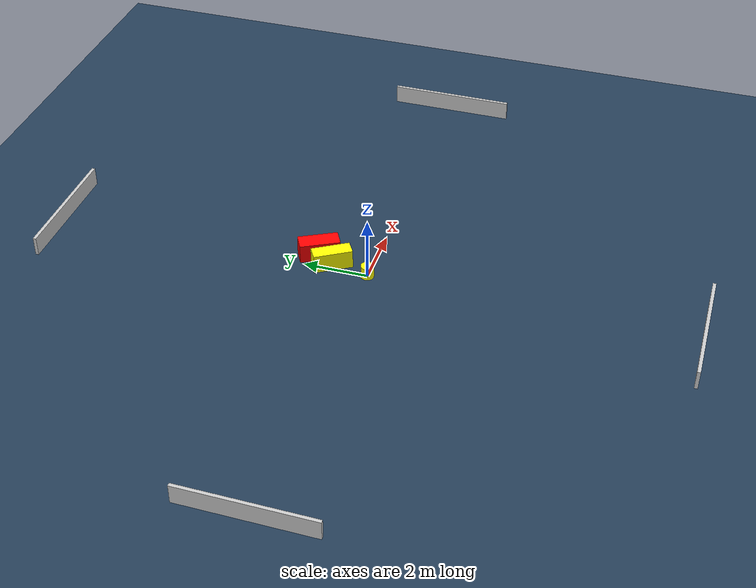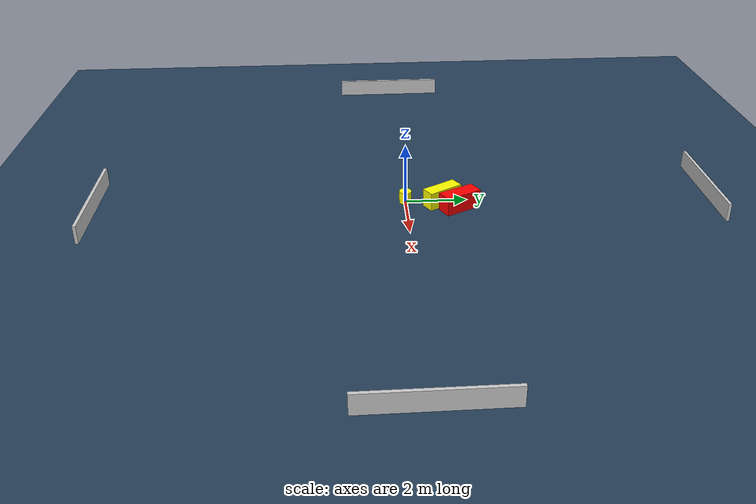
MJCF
<?xml version="1.0" ?>
<mujoco model="generated_environment">
  <option timestep="0.01" integrator="RK4" cone="elliptic"/>
  <default>
    <geom density="1"/>
  </default>
  <asset>
    <texture builtin="gradient" height="3072" name="skybox" rgb1="0.3 0.5 0.7" rgb2="0 0 0" type="skybox" width="512"/>
    <texture builtin="checker" height="300" name="groundplane" rgb1="0.2 0.3 0.4" rgb2="0.1 0.2 0.3" type="2d" width="300"/>
    <material name="groundplane" reflectance="0.2" texrepeat="5 5" texture="groundplane"/>
  </asset>
  <worldbody>
    <light dir="0 0 -1" directional="true" pos="0 0 1.5"/>
    <geom condim="3" friction="0.5 0.005 0.001" material="groundplane" name="floor" pos="0 0 0" size="0 0 0.05" type="plane"/>
    <body name="walls">
      <geom name="wall_1" condim="4" pos="-10.0 0.0 0.3" rgba="0.800000011920929 0.800000011920929 0.800000011920929 1.0" size="0.05 2.0 0.3" type="box"/>
      <geom name="wall_2" condim="4" pos="10.0 0.0 0.3" rgba="0.800000011920929 0.800000011920929 0.800000011920929 1.0" size="0.05 2.0 0.3" type="box"/>
      <geom name="wall_3" condim="4" pos="0.0 -10.0 0.3" rgba="0.800000011920929 0.800000011920929 0.800000011920929 1.0" size="2.0 0.05 0.3" type="box"/>
      <geom name="wall_4" condim="4" pos="0.0 10.0 0.3" rgba="0.800000011920929 0.800000011920929 0.800000011920929 1.0" size="2.0 0.05 0.3" type="box"/>
    </body>
    <body name="robot">
      <joint name="joint_x" type="slide" pos="0 0 0" axis="1 0 0"/>
      <joint name="joint_y" type="slide" pos="0 0 0" axis="0 1 0"/>
      <geom name="robot" type="cylinder" pos="0.0 0.0 0.2" size="0.2 0.2 0.0" mass="5.0" friction="1.0 0.005 0.0001" condim="4" rgba="1.0 1.0 0.0 1.0"/>
    </body>
    <body name="obstacle_1_movable">
      <geom name="obstacle_1_movable" condim="4" pos="0.17383738854851044 1.1832525609377198 0.3" euler="0 0 31.561047042195987" friction="0.0 0.005 0.001" rgba="1.0 1.0 0.0 1.0" size="0.22635666151965572 0.6017179361224669 0.3" type="box" mass="0.1"/>
      <joint type="free"/>
    </body>
    <body name="obstacle_2_static">
      <geom name="obstacle_2_static" condim="4" pos="0.5485470663361649 1.718249326327312 0.3" euler="0 0 27.894248656763384" friction="0.0 0.005 0.001" rgba="1.0 0.0 0.0 1.0" size="0.2654424267009684 0.6248386924341214 0.3" type="box"/>
    </body>
  </worldbody>
  <actuator>
    <motor name="actuator_x" joint="joint_x" gear="1" ctrlrange="-1 1"/>
    <motor name="actuator_y" joint="joint_y" gear="1" ctrlrange="-1 1"/>
  </actuator>
</mujoco>
